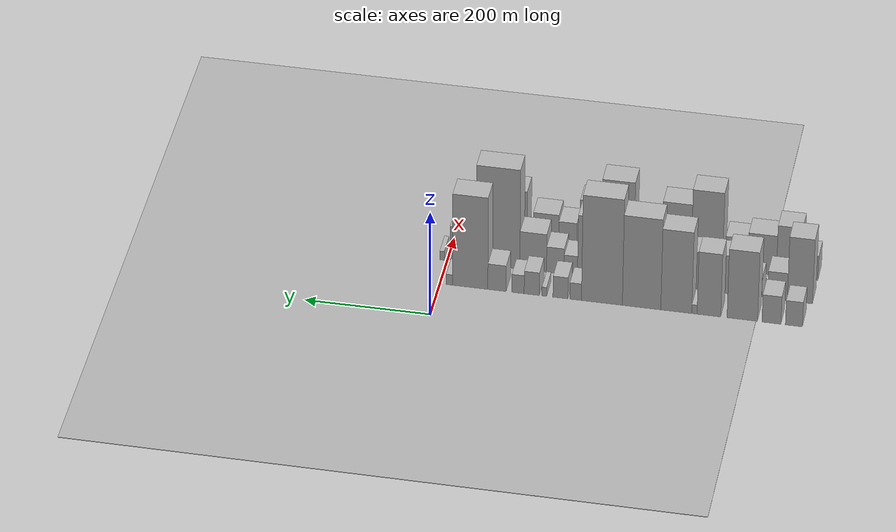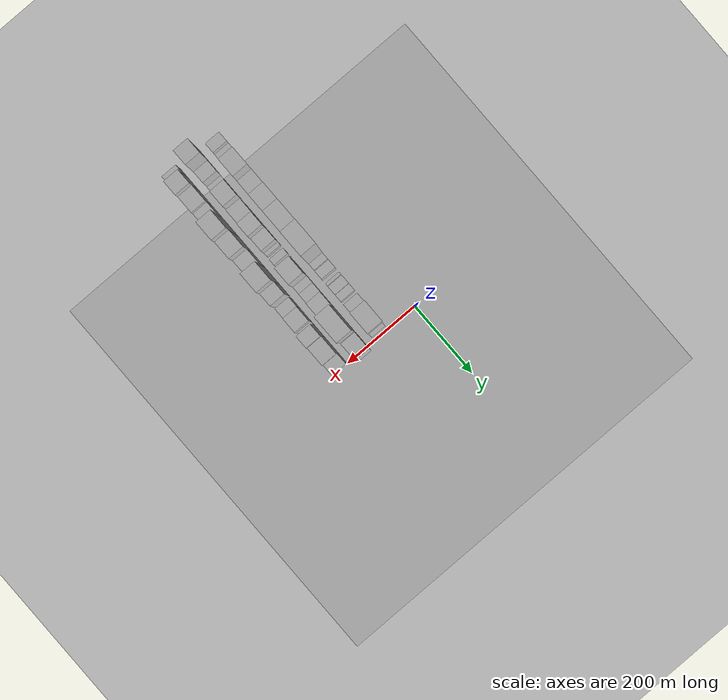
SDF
<sdf version="1.6">
 <world name="default">
  <include><name>ground_plane_1</name><uri>model://HANNAS_ground_plane</uri></include>
  <include>
   <name>ground_plane_2</name>
   <uri>model://HANNAS_ground_plane</uri>
   <pose>100 0 0  0 0 0</pose>
  </include>
  <model name="building_1">
   <static>1</static>
   <pose>100.0000 -559.6383 0 0.000000 0.000000 0.000000</pose>
   <link name="link">
    <pose>0 0 24.00 0 0 0</pose>
    <collision name="collision"><geometry><box><size>40.0000 26.7234 48.0000</size></box></geometry></collision>
    <visual name="visual">
     <cast_shadows>0</cast_shadows>
     <geometry><box><size>40.0000 26.7234 48.0000</size></box></geometry>
     <material>
      <script>
       <uri>model://HANNAS_wall/materials/scripts</uri>
       <uri>model://HANNAS_wall/materials/textures</uri>
       <name>vrc/HANNAS_wall</name>
      </script>
     </material>
    </visual>
   </link>
  </model>
  <model name="building_2">
   <static>1</static>
   <pose>100.0000 -524.3369 0 0.000000 0.000000 0.000000</pose>
   <link name="link">
    <pose>0 0 27.00 0 0 0</pose>
    <collision name="collision"><geometry><box><size>40.0000 29.8794 54.0000</size></box></geometry></collision>
    <visual name="visual">
     <cast_shadows>0</cast_shadows>
     <geometry><box><size>40.0000 29.8794 54.0000</size></box></geometry>
     <material>
      <script>
       <uri>model://HANNAS_wall/materials/scripts</uri>
       <uri>model://HANNAS_wall/materials/textures</uri>
       <name>vrc/HANNAS_wall</name>
      </script>
     </material>
    </visual>
   </link>
  </model>
  <model name="building_3">
   <static>1</static>
   <pose>100.0000 -478.4621 0 0.000000 0.000000 0.000000</pose>
   <link name="link">
    <pose>0 0 67.50 0 0 0</pose>
    <collision name="collision"><geometry><box><size>40.0000 47.8702 135.0000</size></box></geometry></collision>
    <visual name="visual">
     <cast_shadows>0</cast_shadows>
     <geometry><box><size>40.0000 47.8702 135.0000</size></box></geometry>
     <material>
      <script>
       <uri>model://HANNAS_wall/materials/scripts</uri>
       <uri>model://HANNAS_wall/materials/textures</uri>
       <name>vrc/HANNAS_wall</name>
      </script>
     </material>
    </visual>
   </link>
  </model>
  <model name="building_4">
   <static>1</static>
   <pose>100.0000 -425.8736 0 0.000000 0.000000 0.000000</pose>
   <link name="link">
    <pose>0 0 61.50 0 0 0</pose>
    <collision name="collision"><geometry><box><size>40.0000 37.3067 123.0000</size></box></geometry></collision>
    <visual name="visual">
     <cast_shadows>0</cast_shadows>
     <geometry><box><size>40.0000 37.3067 123.0000</size></box></geometry>
     <material>
      <script>
       <uri>model://HANNAS_wall/materials/scripts</uri>
       <uri>model://HANNAS_wall/materials/textures</uri>
       <name>vrc/HANNAS_wall</name>
      </script>
     </material>
    </visual>
   </link>
  </model>
  <model name="building_5">
   <static>1</static>
   <pose>100.0000 -403.0563 0 0.000000 0.000000 0.000000</pose>
   <link name="link">
    <pose>0 0 9.00 0 0 0</pose>
    <collision name="collision"><geometry><box><size>40.0000 8.3280 18.0000</size></box></geometry></collision>
    <visual name="visual">
     <cast_shadows>0</cast_shadows>
     <geometry><box><size>40.0000 8.3280 18.0000</size></box></geometry>
     <material>
      <script>
       <uri>model://HANNAS_wall/materials/scripts</uri>
       <uri>model://HANNAS_wall/materials/textures</uri>
       <name>vrc/HANNAS_wall</name>
      </script>
     </material>
    </visual>
   </link>
  </model>
  <model name="building_6">
   <static>1</static>
   <pose>100.0000 -374.4395 0 0.000000 0.000000 0.000000</pose>
   <link name="link">
    <pose>0 0 79.50 0 0 0</pose>
    <collision name="collision"><geometry><box><size>40.0000 48.9057 159.0000</size></box></geometry></collision>
    <visual name="visual">
     <cast_shadows>0</cast_shadows>
     <geometry><box><size>40.0000 48.9057 159.0000</size></box></geometry>
     <material>
      <script>
       <uri>model://HANNAS_wall/materials/scripts</uri>
       <uri>model://HANNAS_wall/materials/textures</uri>
       <name>vrc/HANNAS_wall</name>
      </script>
     </material>
    </visual>
   </link>
  </model>
  <model name="building_7">
   <static>1</static>
   <pose>100.0000 -319.6040 0 0.000000 0.000000 0.000000</pose>
   <link name="link">
    <pose>0 0 88.50 0 0 0</pose>
    <collision name="collision"><geometry><box><size>40.0000 60.7652 177.0000</size></box></geometry></collision>
    <visual name="visual">
     <cast_shadows>0</cast_shadows>
     <geometry><box><size>40.0000 60.7652 177.0000</size></box></geometry>
     <material>
      <script>
       <uri>model://HANNAS_wall/materials/scripts</uri>
       <uri>model://HANNAS_wall/materials/textures</uri>
       <name>vrc/HANNAS_wall</name>
      </script>
     </material>
    </visual>
   </link>
  </model>
  <model name="building_8">
   <static>1</static>
   <pose>100.0000 -256.8189 0 0.000000 0.000000 0.000000</pose>
   <link name="link">
    <pose>0 0 103.50 0 0 0</pose>
    <collision name="collision"><geometry><box><size>40.0000 64.8049 207.0000</size></box></geometry></collision>
    <visual name="visual">
     <cast_shadows>0</cast_shadows>
     <geometry><box><size>40.0000 64.8049 207.0000</size></box></geometry>
     <material>
      <script>
       <uri>model://HANNAS_wall/materials/scripts</uri>
       <uri>model://HANNAS_wall/materials/textures</uri>
       <name>vrc/HANNAS_wall</name>
      </script>
     </material>
    </visual>
   </link>
  </model>
  <model name="building_9">
   <static>1</static>
   <pose>100.0000 -215.1437 0 0.000000 0.000000 0.000000</pose>
   <link name="link">
    <pose>0 0 16.50 0 0 0</pose>
    <collision name="collision"><geometry><box><size>40.0000 18.5455 33.0000</size></box></geometry></collision>
    <visual name="visual">
     <cast_shadows>0</cast_shadows>
     <geometry><box><size>40.0000 18.5455 33.0000</size></box></geometry>
     <material>
      <script>
       <uri>model://HANNAS_wall/materials/scripts</uri>
       <uri>model://HANNAS_wall/materials/textures</uri>
       <name>vrc/HANNAS_wall</name>
      </script>
     </material>
    </visual>
   </link>
  </model>
  <model name="building_10">
   <static>1</static>
   <pose>100.0000 -191.0404 0 0.000000 0.000000 0.000000</pose>
   <link name="link">
    <pose>0 0 21.00 0 0 0</pose>
    <collision name="collision"><geometry><box><size>40.0000 23.6610 42.0000</size></box></geometry></collision>
    <visual name="visual">
     <cast_shadows>0</cast_shadows>
     <geometry><box><size>40.0000 23.6610 42.0000</size></box></geometry>
     <material>
      <script>
       <uri>model://HANNAS_wall/materials/scripts</uri>
       <uri>model://HANNAS_wall/materials/textures</uri>
       <name>vrc/HANNAS_wall</name>
      </script>
     </material>
    </visual>
   </link>
  </model>
  <model name="building_11">
   <static>1</static>
   <pose>100.0000 -165.4603 0 0.000000 0.000000 0.000000</pose>
   <link name="link">
    <pose>0 0 9.00 0 0 0</pose>
    <collision name="collision"><geometry><box><size>40.0000 7.4993 18.0000</size></box></geometry></collision>
    <visual name="visual">
     <cast_shadows>0</cast_shadows>
     <geometry><box><size>40.0000 7.4993 18.0000</size></box></geometry>
     <material>
      <script>
       <uri>model://HANNAS_wall/materials/scripts</uri>
       <uri>model://HANNAS_wall/materials/textures</uri>
       <name>vrc/HANNAS_wall</name>
      </script>
     </material>
    </visual>
   </link>
  </model>
  <model name="building_12">
   <static>1</static>
   <pose>100.0000 -145.5860 0 0.000000 0.000000 0.000000</pose>
   <link name="link">
    <pose>0 0 22.50 0 0 0</pose>
    <collision name="collision"><geometry><box><size>40.0000 24.2491 45.0000</size></box></geometry></collision>
    <visual name="visual">
     <cast_shadows>0</cast_shadows>
     <geometry><box><size>40.0000 24.2491 45.0000</size></box></geometry>
     <material>
      <script>
       <uri>model://HANNAS_wall/materials/scripts</uri>
       <uri>model://HANNAS_wall/materials/textures</uri>
       <name>vrc/HANNAS_wall</name>
      </script>
     </material>
    </visual>
   </link>
  </model>
  <model name="building_13">
   <static>1</static>
   <pose>100.0000 -123.6459 0 0.000000 0.000000 0.000000</pose>
   <link name="link">
    <pose>0 0 18.00 0 0 0</pose>
    <collision name="collision"><geometry><box><size>40.0000 19.6311 36.0000</size></box></geometry></collision>
    <visual name="visual">
     <cast_shadows>0</cast_shadows>
     <geometry><box><size>40.0000 19.6311 36.0000</size></box></geometry>
     <material>
      <script>
       <uri>model://HANNAS_wall/materials/scripts</uri>
       <uri>model://HANNAS_wall/materials/textures</uri>
       <name>vrc/HANNAS_wall</name>
      </script>
     </material>
    </visual>
   </link>
  </model>
  <model name="building_14">
   <static>1</static>
   <pose>100.0000 -90.2637 0 0.000000 0.000000 0.000000</pose>
   <link name="link">
    <pose>0 0 25.50 0 0 0</pose>
    <collision name="collision"><geometry><box><size>40.0000 29.1333 51.0000</size></box></geometry></collision>
    <visual name="visual">
     <cast_shadows>0</cast_shadows>
     <geometry><box><size>40.0000 29.1333 51.0000</size></box></geometry>
     <material>
      <script>
       <uri>model://HANNAS_wall/materials/scripts</uri>
       <uri>model://HANNAS_wall/materials/textures</uri>
       <name>vrc/HANNAS_wall</name>
      </script>
     </material>
    </visual>
   </link>
  </model>
  <model name="building_15">
   <static>1</static>
   <pose>100.0000 -47.6259 0 0.000000 0.000000 0.000000</pose>
   <link name="link">
    <pose>0 0 90.00 0 0 0</pose>
    <collision name="collision"><geometry><box><size>40.0000 56.1424 180.0000</size></box></geometry></collision>
    <visual name="visual">
     <cast_shadows>0</cast_shadows>
     <geometry><box><size>40.0000 56.1424 180.0000</size></box></geometry>
     <material>
      <script>
       <uri>model://HANNAS_wall/materials/scripts</uri>
       <uri>model://HANNAS_wall/materials/textures</uri>
       <name>vrc/HANNAS_wall</name>
      </script>
     </material>
    </visual>
   </link>
  </model>
  <model name="building_16">
   <static>1</static>
   <pose>100.0000 -14.3645 0 0.000000 0.000000 0.000000</pose>
   <link name="link">
    <pose>0 0 10.50 0 0 0</pose>
    <collision name="collision"><geometry><box><size>40.0000 10.3804 21.0000</size></box></geometry></collision>
    <visual name="visual">
     <cast_shadows>0</cast_shadows>
     <geometry><box><size>40.0000 10.3804 21.0000</size></box></geometry>
     <material>
      <script>
       <uri>model://HANNAS_wall/materials/scripts</uri>
       <uri>model://HANNAS_wall/materials/textures</uri>
       <name>vrc/HANNAS_wall</name>
      </script>
     </material>
    </visual>
   </link>
  </model>
  <model name="building_34">
   <static>1</static>
   <pose>160.0000 -560.1067 0 0.000000 0.000000 0.000000</pose>
   <link name="link">
    <pose>0 0 63.00 0 0 0</pose>
    <collision name="collision"><geometry><box><size>40.0000 39.7866 126.0000</size></box></geometry></collision>
    <visual name="visual">
     <cast_shadows>0</cast_shadows>
     <geometry><box><size>40.0000 39.7866 126.0000</size></box></geometry>
     <material>
      <script>
       <uri>model://HANNAS_wall/materials/scripts</uri>
       <uri>model://HANNAS_wall/materials/textures</uri>
       <name>vrc/HANNAS_wall</name>
      </script>
     </material>
    </visual>
   </link>
  </model>
  <model name="building_35">
   <static>1</static>
   <pose>160.0000 -524.6617 0 0.000000 0.000000 0.000000</pose>
   <link name="link">
    <pose>0 0 27.00 0 0 0</pose>
    <collision name="collision"><geometry><box><size>40.0000 31.1033 54.0000</size></box></geometry></collision>
    <visual name="visual">
     <cast_shadows>0</cast_shadows>
     <geometry><box><size>40.0000 31.1033 54.0000</size></box></geometry>
     <material>
      <script>
       <uri>model://HANNAS_wall/materials/scripts</uri>
       <uri>model://HANNAS_wall/materials/textures</uri>
       <name>vrc/HANNAS_wall</name>
      </script>
     </material>
    </visual>
   </link>
  </model>
  <model name="building_36">
   <static>1</static>
   <pose>160.0000 -489.6684 0 0.000000 0.000000 0.000000</pose>
   <link name="link">
    <pose>0 0 19.50 0 0 0</pose>
    <collision name="collision"><geometry><box><size>40.0000 20.8833 39.0000</size></box></geometry></collision>
    <visual name="visual">
     <cast_shadows>0</cast_shadows>
     <geometry><box><size>40.0000 20.8833 39.0000</size></box></geometry>
     <material>
      <script>
       <uri>model://HANNAS_wall/materials/scripts</uri>
       <uri>model://HANNAS_wall/materials/textures</uri>
       <name>vrc/HANNAS_wall</name>
      </script>
     </material>
    </visual>
   </link>
  </model>
  <model name="building_37">
   <static>1</static>
   <pose>160.0000 -457.3704 0 0.000000 0.000000 0.000000</pose>
   <link name="link">
    <pose>0 0 37.50 0 0 0</pose>
    <collision name="collision"><geometry><box><size>40.0000 43.7128 75.0000</size></box></geometry></collision>
    <visual name="visual">
     <cast_shadows>0</cast_shadows>
     <geometry><box><size>40.0000 43.7128 75.0000</size></box></geometry>
     <material>
      <script>
       <uri>model://HANNAS_wall/materials/scripts</uri>
       <uri>model://HANNAS_wall/materials/textures</uri>
       <name>vrc/HANNAS_wall</name>
      </script>
     </material>
    </visual>
   </link>
  </model>
  <model name="building_38">
   <static>1</static>
   <pose>160.0000 -403.6796 0 0.000000 0.000000 0.000000</pose>
   <link name="link">
    <pose>0 0 37.50 0 0 0</pose>
    <collision name="collision"><geometry><box><size>40.0000 43.6689 75.0000</size></box></geometry></collision>
    <visual name="visual">
     <cast_shadows>0</cast_shadows>
     <geometry><box><size>40.0000 43.6689 75.0000</size></box></geometry>
     <material>
      <script>
       <uri>model://HANNAS_wall/materials/scripts</uri>
       <uri>model://HANNAS_wall/materials/textures</uri>
       <name>vrc/HANNAS_wall</name>
      </script>
     </material>
    </visual>
   </link>
  </model>
  <model name="building_39">
   <static>1</static>
   <pose>160.0000 -363.4628 0 0.000000 0.000000 0.000000</pose>
   <link name="link">
    <pose>0 0 51.00 0 0 0</pose>
    <collision name="collision"><geometry><box><size>40.0000 36.7647 102.0000</size></box></geometry></collision>
    <visual name="visual">
     <cast_shadows>0</cast_shadows>
     <geometry><box><size>40.0000 36.7647 102.0000</size></box></geometry>
     <material>
      <script>
       <uri>model://HANNAS_wall/materials/scripts</uri>
       <uri>model://HANNAS_wall/materials/textures</uri>
       <name>vrc/HANNAS_wall</name>
      </script>
     </material>
    </visual>
   </link>
  </model>
  <model name="building_40">
   <static>1</static>
   <pose>160.0000 -327.2584 0 0.000000 0.000000 0.000000</pose>
   <link name="link">
    <pose>0 0 33.00 0 0 0</pose>
    <collision name="collision"><geometry><box><size>40.0000 35.6440 66.0000</size></box></geometry></collision>
    <visual name="visual">
     <cast_shadows>0</cast_shadows>
     <geometry><box><size>40.0000 35.6440 66.0000</size></box></geometry>
     <material>
      <script>
       <uri>model://HANNAS_wall/materials/scripts</uri>
       <uri>model://HANNAS_wall/materials/textures</uri>
       <name>vrc/HANNAS_wall</name>
      </script>
     </material>
    </visual>
   </link>
  </model>
  <model name="building_41">
   <static>1</static>
   <pose>160.0000 -304.5331 0 0.000000 0.000000 0.000000</pose>
   <link name="link">
    <pose>0 0 10.50 0 0 0</pose>
    <collision name="collision"><geometry><box><size>40.0000 9.8067 21.0000</size></box></geometry></collision>
    <visual name="visual">
     <cast_shadows>0</cast_shadows>
     <geometry><box><size>40.0000 9.8067 21.0000</size></box></geometry>
     <material>
      <script>
       <uri>model://HANNAS_wall/materials/scripts</uri>
       <uri>model://HANNAS_wall/materials/textures</uri>
       <name>vrc/HANNAS_wall</name>
      </script>
     </material>
    </visual>
   </link>
  </model>
  <model name="building_42">
   <static>1</static>
   <pose>160.0000 -281.1863 0 0.000000 0.000000 0.000000</pose>
   <link name="link">
    <pose>0 0 16.50 0 0 0</pose>
    <collision name="collision"><geometry><box><size>40.0000 16.8869 33.0000</size></box></geometry></collision>
    <visual name="visual">
     <cast_shadows>0</cast_shadows>
     <geometry><box><size>40.0000 16.8869 33.0000</size></box></geometry>
     <material>
      <script>
       <uri>model://HANNAS_wall/materials/scripts</uri>
       <uri>model://HANNAS_wall/materials/textures</uri>
       <name>vrc/HANNAS_wall</name>
      </script>
     </material>
    </visual>
   </link>
  </model>
  <model name="building_43">
   <static>1</static>
   <pose>160.0000 -264.1302 0 0.000000 0.000000 0.000000</pose>
   <link name="link">
    <pose>0 0 9.00 0 0 0</pose>
    <collision name="collision"><geometry><box><size>40.0000 7.2255 18.0000</size></box></geometry></collision>
    <visual name="visual">
     <cast_shadows>0</cast_shadows>
     <geometry><box><size>40.0000 7.2255 18.0000</size></box></geometry>
     <material>
      <script>
       <uri>model://HANNAS_wall/materials/scripts</uri>
       <uri>model://HANNAS_wall/materials/textures</uri>
       <name>vrc/HANNAS_wall</name>
      </script>
     </material>
    </visual>
   </link>
  </model>
  <model name="building_44">
   <static>1</static>
   <pose>160.0000 -231.0679 0 0.000000 0.000000 0.000000</pose>
   <link name="link">
    <pose>0 0 60.00 0 0 0</pose>
    <collision name="collision"><geometry><box><size>40.0000 46.8989 120.0000</size></box></geometry></collision>
    <visual name="visual">
     <cast_shadows>0</cast_shadows>
     <geometry><box><size>40.0000 46.8989 120.0000</size></box></geometry>
     <material>
      <script>
       <uri>model://HANNAS_wall/materials/scripts</uri>
       <uri>model://HANNAS_wall/materials/textures</uri>
       <name>vrc/HANNAS_wall</name>
      </script>
     </material>
    </visual>
   </link>
  </model>
  <model name="building_45">
   <static>1</static>
   <pose>160.0000 -196.9596 0 0.000000 0.000000 0.000000</pose>
   <link name="link">
    <pose>0 0 19.50 0 0 0</pose>
    <collision name="collision"><geometry><box><size>40.0000 21.3179 39.0000</size></box></geometry></collision>
    <visual name="visual">
     <cast_shadows>0</cast_shadows>
     <geometry><box><size>40.0000 21.3179 39.0000</size></box></geometry>
     <material>
      <script>
       <uri>model://HANNAS_wall/materials/scripts</uri>
       <uri>model://HANNAS_wall/materials/textures</uri>
       <name>vrc/HANNAS_wall</name>
      </script>
     </material>
    </visual>
   </link>
  </model>
  <model name="building_46">
   <static>1</static>
   <pose>160.0000 -172.2539 0 0.000000 0.000000 0.000000</pose>
   <link name="link">
    <pose>0 0 25.50 0 0 0</pose>
    <collision name="collision"><geometry><box><size>40.0000 28.0935 51.0000</size></box></geometry></collision>
    <visual name="visual">
     <cast_shadows>0</cast_shadows>
     <geometry><box><size>40.0000 28.0935 51.0000</size></box></geometry>
     <material>
      <script>
       <uri>model://HANNAS_wall/materials/scripts</uri>
       <uri>model://HANNAS_wall/materials/textures</uri>
       <name>vrc/HANNAS_wall</name>
      </script>
     </material>
    </visual>
   </link>
  </model>
  <model name="building_47">
   <static>1</static>
   <pose>160.0000 -136.9309 0 0.000000 0.000000 0.000000</pose>
   <link name="link">
    <pose>0 0 37.50 0 0 0</pose>
    <collision name="collision"><geometry><box><size>40.0000 42.5526 75.0000</size></box></geometry></collision>
    <visual name="visual">
     <cast_shadows>0</cast_shadows>
     <geometry><box><size>40.0000 42.5526 75.0000</size></box></geometry>
     <material>
      <script>
       <uri>model://HANNAS_wall/materials/scripts</uri>
       <uri>model://HANNAS_wall/materials/textures</uri>
       <name>vrc/HANNAS_wall</name>
      </script>
     </material>
    </visual>
   </link>
  </model>
  <model name="building_48">
   <static>1</static>
   <pose>160.0000 -80.7195 0 0.000000 0.000000 0.000000</pose>
   <link name="link">
    <pose>0 0 97.50 0 0 0</pose>
    <collision name="collision"><geometry><box><size>40.0000 69.8701 195.0000</size></box></geometry></collision>
    <visual name="visual">
     <cast_shadows>0</cast_shadows>
     <geometry><box><size>40.0000 69.8701 195.0000</size></box></geometry>
     <material>
      <script>
       <uri>model://HANNAS_wall/materials/scripts</uri>
       <uri>model://HANNAS_wall/materials/textures</uri>
       <name>vrc/HANNAS_wall</name>
      </script>
     </material>
    </visual>
   </link>
  </model>
  <model name="building_49">
   <static>1</static>
   <pose>160.0000 -23.3285 0 0.000000 0.000000 0.000000</pose>
   <link name="link">
    <pose>0 0 34.50 0 0 0</pose>
    <collision name="collision"><geometry><box><size>40.0000 38.9121 69.0000</size></box></geometry></collision>
    <visual name="visual">
     <cast_shadows>0</cast_shadows>
     <geometry><box><size>40.0000 38.9121 69.0000</size></box></geometry>
     <material>
      <script>
       <uri>model://HANNAS_wall/materials/scripts</uri>
       <uri>model://HANNAS_wall/materials/textures</uri>
       <name>vrc/HANNAS_wall</name>
      </script>
     </material>
    </visual>
   </link>
  </model>
  <model name="building_50">
   <static>1</static>
   <pose>160.0000 8.7898 0 0.000000 0.000000 0.000000</pose>
   <link name="link">
    <pose>0 0 9.00 0 0 0</pose>
    <collision name="collision"><geometry><box><size>40.0000 7.3244 18.0000</size></box></geometry></collision>
    <visual name="visual">
     <cast_shadows>0</cast_shadows>
     <geometry><box><size>40.0000 7.3244 18.0000</size></box></geometry>
     <material>
      <script>
       <uri>model://HANNAS_wall/materials/scripts</uri>
       <uri>model://HANNAS_wall/materials/textures</uri>
       <name>vrc/HANNAS_wall</name>
      </script>
     </material>
    </visual>
   </link>
  </model>
  <model name="building_67">
   <static>1</static>
   <pose>220.0000 -566.5051 0 0.000000 0.000000 0.000000</pose>
   <link name="link">
    <pose>0 0 24.00 0 0 0</pose>
    <collision name="collision"><geometry><box><size>40.0000 26.9898 48.0000</size></box></geometry></collision>
    <visual name="visual">
     <cast_shadows>0</cast_shadows>
     <geometry><box><size>40.0000 26.9898 48.0000</size></box></geometry>
     <material>
      <script>
       <uri>model://HANNAS_wall/materials/scripts</uri>
       <uri>model://HANNAS_wall/materials/textures</uri>
       <name>vrc/HANNAS_wall</name>
      </script>
     </material>
    </visual>
   </link>
  </model>
  <model name="building_68">
   <static>1</static>
   <pose>220.0000 -533.5303 0 0.000000 0.000000 0.000000</pose>
   <link name="link">
    <pose>0 0 49.50 0 0 0</pose>
    <collision name="collision"><geometry><box><size>40.0000 38.9598 99.0000</size></box></geometry></collision>
    <visual name="visual">
     <cast_shadows>0</cast_shadows>
     <geometry><box><size>40.0000 38.9598 99.0000</size></box></geometry>
     <material>
      <script>
       <uri>model://HANNAS_wall/materials/scripts</uri>
       <uri>model://HANNAS_wall/materials/textures</uri>
       <name>vrc/HANNAS_wall</name>
      </script>
     </material>
    </visual>
   </link>
  </model>
  <model name="building_69">
   <static>1</static>
   <pose>220.0000 -491.2478 0 0.000000 0.000000 0.000000</pose>
   <link name="link">
    <pose>0 0 39.00 0 0 0</pose>
    <collision name="collision"><geometry><box><size>40.0000 45.6051 78.0000</size></box></geometry></collision>
    <visual name="visual">
     <cast_shadows>0</cast_shadows>
     <geometry><box><size>40.0000 45.6051 78.0000</size></box></geometry>
     <material>
      <script>
       <uri>model://HANNAS_wall/materials/scripts</uri>
       <uri>model://HANNAS_wall/materials/textures</uri>
       <name>vrc/HANNAS_wall</name>
      </script>
     </material>
    </visual>
   </link>
  </model>
  <model name="building_70">
   <static>1</static>
   <pose>220.0000 -450.4442 0 0.000000 0.000000 0.000000</pose>
   <link name="link">
    <pose>0 0 33.00 0 0 0</pose>
    <collision name="collision"><geometry><box><size>40.0000 36.0021 66.0000</size></box></geometry></collision>
    <visual name="visual">
     <cast_shadows>0</cast_shadows>
     <geometry><box><size>40.0000 36.0021 66.0000</size></box></geometry>
     <material>
      <script>
       <uri>model://HANNAS_wall/materials/scripts</uri>
       <uri>model://HANNAS_wall/materials/textures</uri>
       <name>vrc/HANNAS_wall</name>
      </script>
     </material>
    </visual>
   </link>
  </model>
  <model name="building_71">
   <static>1</static>
   <pose>220.0000 -403.5134 0 0.000000 0.000000 0.000000</pose>
   <link name="link">
    <pose>0 0 75.00 0 0 0</pose>
    <collision name="collision"><geometry><box><size>40.0000 49.8595 150.0000</size></box></geometry></collision>
    <visual name="visual">
     <cast_shadows>0</cast_shadows>
     <geometry><box><size>40.0000 49.8595 150.0000</size></box></geometry>
     <material>
      <script>
       <uri>model://HANNAS_wall/materials/scripts</uri>
       <uri>model://HANNAS_wall/materials/textures</uri>
       <name>vrc/HANNAS_wall</name>
      </script>
     </material>
    </visual>
   </link>
  </model>
  <model name="building_72">
   <static>1</static>
   <pose>220.0000 -355.2053 0 0.000000 0.000000 0.000000</pose>
   <link name="link">
    <pose>0 0 60.00 0 0 0</pose>
    <collision name="collision"><geometry><box><size>40.0000 46.7568 120.0000</size></box></geometry></collision>
    <visual name="visual">
     <cast_shadows>0</cast_shadows>
     <geometry><box><size>40.0000 46.7568 120.0000</size></box></geometry>
     <material>
      <script>
       <uri>model://HANNAS_wall/materials/scripts</uri>
       <uri>model://HANNAS_wall/materials/textures</uri>
       <name>vrc/HANNAS_wall</name>
      </script>
     </material>
    </visual>
   </link>
  </model>
  <model name="building_73">
   <static>1</static>
   <pose>220.0000 -309.5836 0 0.000000 0.000000 0.000000</pose>
   <link name="link">
    <pose>0 0 37.50 0 0 0</pose>
    <collision name="collision"><geometry><box><size>40.0000 44.4865 75.0000</size></box></geometry></collision>
    <visual name="visual">
     <cast_shadows>0</cast_shadows>
     <geometry><box><size>40.0000 44.4865 75.0000</size></box></geometry>
     <material>
      <script>
       <uri>model://HANNAS_wall/materials/scripts</uri>
       <uri>model://HANNAS_wall/materials/textures</uri>
       <name>vrc/HANNAS_wall</name>
      </script>
     </material>
    </visual>
   </link>
  </model>
  <model name="building_74">
   <static>1</static>
   <pose>220.0000 -261.2516 0 0.000000 0.000000 0.000000</pose>
   <link name="link">
    <pose>0 0 75.00 0 0 0</pose>
    <collision name="collision"><geometry><box><size>40.0000 52.1775 150.0000</size></box></geometry></collision>
    <visual name="visual">
     <cast_shadows>0</cast_shadows>
     <geometry><box><size>40.0000 52.1775 150.0000</size></box></geometry>
     <material>
      <script>
       <uri>model://HANNAS_wall/materials/scripts</uri>
       <uri>model://HANNAS_wall/materials/textures</uri>
       <name>vrc/HANNAS_wall</name>
      </script>
     </material>
    </visual>
   </link>
  </model>
  <model name="building_75">
   <static>1</static>
   <pose>220.0000 -217.9163 0 0.000000 0.000000 0.000000</pose>
   <link name="link">
    <pose>0 0 52.50 0 0 0</pose>
    <collision name="collision"><geometry><box><size>40.0000 34.4932 105.0000</size></box></geometry></collision>
    <visual name="visual">
     <cast_shadows>0</cast_shadows>
     <geometry><box><size>40.0000 34.4932 105.0000</size></box></geometry>
     <material>
      <script>
       <uri>model://HANNAS_wall/materials/scripts</uri>
       <uri>model://HANNAS_wall/materials/textures</uri>
       <name>vrc/HANNAS_wall</name>
      </script>
     </material>
    </visual>
   </link>
  </model>
  <model name="building_76">
   <static>1</static>
   <pose>220.0000 -181.3988 0 0.000000 0.000000 0.000000</pose>
   <link name="link">
    <pose>0 0 28.50 0 0 0</pose>
    <collision name="collision"><geometry><box><size>40.0000 28.5417 57.0000</size></box></geometry></collision>
    <visual name="visual">
     <cast_shadows>0</cast_shadows>
     <geometry><box><size>40.0000 28.5417 57.0000</size></box></geometry>
     <material>
      <script>
       <uri>model://HANNAS_wall/materials/scripts</uri>
       <uri>model://HANNAS_wall/materials/textures</uri>
       <name>vrc/HANNAS_wall</name>
      </script>
     </material>
    </visual>
   </link>
  </model>
  <model name="building_77">
   <static>1</static>
   <pose>220.0000 -146.6669 0 0.000000 0.000000 0.000000</pose>
   <link name="link">
    <pose>0 0 34.50 0 0 0</pose>
    <collision name="collision"><geometry><box><size>40.0000 40.9222 69.0000</size></box></geometry></collision>
    <visual name="visual">
     <cast_shadows>0</cast_shadows>
     <geometry><box><size>40.0000 40.9222 69.0000</size></box></geometry>
     <material>
      <script>
       <uri>model://HANNAS_wall/materials/scripts</uri>
       <uri>model://HANNAS_wall/materials/textures</uri>
       <name>vrc/HANNAS_wall</name>
      </script>
     </material>
    </visual>
   </link>
  </model>
  <model name="building_78">
   <static>1</static>
   <pose>220.0000 -121.0985 0 0.000000 0.000000 0.000000</pose>
   <link name="link">
    <pose>0 0 10.50 0 0 0</pose>
    <collision name="collision"><geometry><box><size>40.0000 10.2146 21.0000</size></box></geometry></collision>
    <visual name="visual">
     <cast_shadows>0</cast_shadows>
     <geometry><box><size>40.0000 10.2146 21.0000</size></box></geometry>
     <material>
      <script>
       <uri>model://HANNAS_wall/materials/scripts</uri>
       <uri>model://HANNAS_wall/materials/textures</uri>
       <name>vrc/HANNAS_wall</name>
      </script>
     </material>
    </visual>
   </link>
  </model>
  <model name="building_79">
   <static>1</static>
   <pose>220.0000 -99.0136 0 0.000000 0.000000 0.000000</pose>
   <link name="link">
    <pose>0 0 54.00 0 0 0</pose>
    <collision name="collision"><geometry><box><size>40.0000 33.9552 108.0000</size></box></geometry></collision>
    <visual name="visual">
     <cast_shadows>0</cast_shadows>
     <geometry><box><size>40.0000 33.9552 108.0000</size></box></geometry>
     <material>
      <script>
       <uri>model://HANNAS_wall/materials/scripts</uri>
       <uri>model://HANNAS_wall/materials/textures</uri>
       <name>vrc/HANNAS_wall</name>
      </script>
     </material>
    </visual>
   </link>
  </model>
  <model name="building_80">
   <static>1</static>
   <pose>220.0000 -57.1610 0 0.000000 0.000000 0.000000</pose>
   <link name="link">
    <pose>0 0 43.50 0 0 0</pose>
    <collision name="collision"><geometry><box><size>40.0000 49.7501 87.0000</size></box></geometry></collision>
    <visual name="visual">
     <cast_shadows>0</cast_shadows>
     <geometry><box><size>40.0000 49.7501 87.0000</size></box></geometry>
     <material>
      <script>
       <uri>model://HANNAS_wall/materials/scripts</uri>
       <uri>model://HANNAS_wall/materials/textures</uri>
       <name>vrc/HANNAS_wall</name>
      </script>
     </material>
    </visual>
   </link>
  </model>
  <model name="building_81">
   <static>1</static>
   <pose>220.0000 -17.0202 0 0.000000 0.000000 0.000000</pose>
   <link name="link">
    <pose>0 0 28.50 0 0 0</pose>
    <collision name="collision"><geometry><box><size>40.0000 30.5315 57.0000</size></box></geometry></collision>
    <visual name="visual">
     <cast_shadows>0</cast_shadows>
     <geometry><box><size>40.0000 30.5315 57.0000</size></box></geometry>
     <material>
      <script>
       <uri>model://HANNAS_wall/materials/scripts</uri>
       <uri>model://HANNAS_wall/materials/textures</uri>
       <name>vrc/HANNAS_wall</name>
      </script>
     </material>
    </visual>
   </link>
  </model>
 </world>
</sdf>
